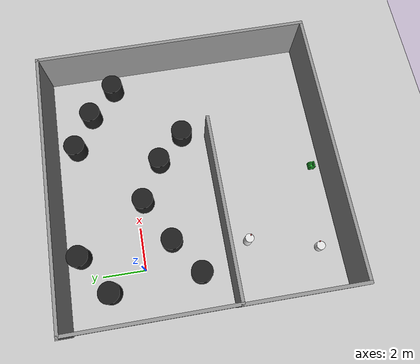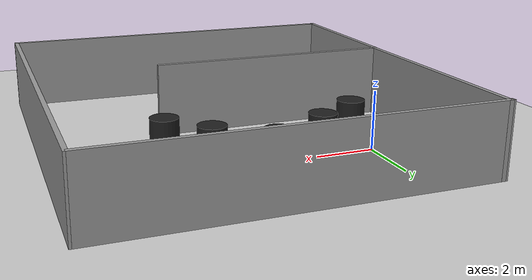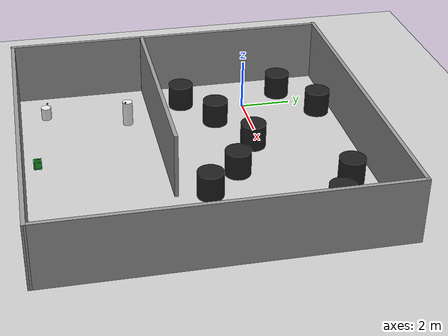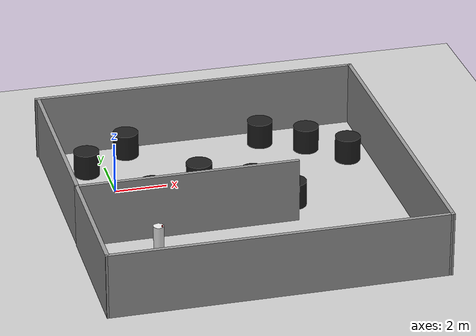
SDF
<sdf version='1.7'>
  <world name='default'>
    <include>
      <uri>model://ground_plane</uri>
    </include>
    <include>
      <uri>model://sun</uri>
    </include>

    <include>
      <uri>model://RedCube</uri>
      <name>cube1</name>
      <pose>0.693 -4.999 1.025 0 0 0</pose>
    </include>

    <include>
      <uri>model://RedCube</uri>
      <name>cube2</name>
      <pose>-0.0853 -8.074 0.877 0 0 0</pose>
    </include>

    <include>
      <uri>model://BlackCylinder</uri>
      <name>cylinder1</name>
      <pose>-0.777086 1.6771 0.499992 0 0 0</pose>
    </include>
    <include>
      <uri>model://BlackCylinder</uri>
      <name>cylinder2</name>
      <pose>-0.540203 -2.5323 0.499998 0 0 0</pose>
    </include>
    <include>
      <uri>model://BlackCylinder</uri>
      <name>cylinder3</name>
      <pose>1.12474 -1.40643 0.499998 0 0 0</pose>
    </include>

    <include>
      <uri>model://BlackCylinder</uri>
      <name>cylinder4</name>
      <pose>3.2081 -0.338127 0.499993 0 0 0</pose>
    </include>
    <include>
      <uri>model://BlackCylinder</uri>
      <name>cylinder5</name>
      <pose>5.08474 -1.38108 0.499993 0 0 0</pose>
    </include>
    <include>
      <uri>model://BlackCylinder</uri>
      <name>cylinder6</name>
      <pose>6.32471 -2.67805 0.50075 0 0 0</pose>
    </include>
    <include>
      <uri>model://BlackCylinder</uri>
      <name>cylinder7</name>
      <pose>6.38707 2.59126 0.499998 0 0 0</pose>
    </include>
    <include>
      <uri>model://BlackCylinder</uri>
      <name>cylinder8</name>
      <pose>8.02806 1.67804 0.499998 0 0 0</pose>
    </include>
    <include>
      <uri>model://BlackCylinder</uri>
      <name>cylinder9</name>
      <pose>9.37243 0.421085 0.499992 0 0 0</pose>
    </include>
    <include>
      <uri>model://BlackCylinder</uri>
      <name>cylinder10</name>
        <pose>1.03709 2.90645 0.499998 0 0 0</pose>
    </include>
    <include>
      <uri>model://WhiteCylinder</uri>
      <name>cylinder11</name>
      <pose>0.57604 -4.91033 0.49999 0 -0 0</pose>
    </include>
    <include>
      <uri>model://WhiteCylinderSmall</uri>
      <name>cylinder12</name>
      <pose>-0.243783 -8.14081 0.375525 0 0 0</pose>
    </include>

    <light name='spot_light' type='spot'>
      <pose>3.23001 -5 25 0 -0 0</pose>
      <diffuse>1 1 1 1</diffuse>
      <specular>1 1 1 1</specular>
      <direction>0 0 -1</direction>
      <attenuation>
        <range>100</range>
        <constant>0.1</constant>
        <linear>0.01</linear>
        <quadratic>0.001</quadratic>
      </attenuation>
      <cast_shadows>0</cast_shadows>
      <spot>
        <inner_angle>0.9</inner_angle>
        <outer_angle>1.5</outer_angle>
        <falloff>1</falloff>
      </spot>
    </light>

    <include>
      <uri>model://greenBin</uri>
      <name>greenBin</name>
      <pose>3.66348 -8.69612 0.365455 0 -0 0</pose>
    </include>

    <include>
      <uri>model://room22</uri>
      <name>room22</name>
      <pose>3.74962 -2.83171 0 0 -0 0</pose>
    </include>
  </world>
</sdf>

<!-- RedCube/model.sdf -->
<sdf version='1.6'>
  <model name='RedCube'>
    <link name='link_2'>
      <pose frame=''>0 0 0 0 -0 0</pose>
      <inertial>
        <mass>0.009375</mass>
        <inertia>
          <ixx>3.91e-06</ixx>
          <ixy>0</ixy>
          <ixz>0</ixz>
          <iyy>3.91e-06</iyy>
          <iyz>0</iyz>
          <izz>3.91e-06</izz>
        </inertia>
        <pose frame=''>0 0 0 0 -0 0</pose>
      </inertial>
      <gravity>1</gravity>
      <self_collide>0</self_collide>
      <kinematic>0</kinematic>
      <enable_wind>0</enable_wind>
      <visual name='visual'>
        <pose frame=''>0 0 0 0 -0 0</pose>
        <geometry>
          <box>
            <size>0.05 0.05 0.05</size>
          </box>
        </geometry>
        <material>
          <lighting>1</lighting>
          <script>
            <uri>file://media/materials/scripts/gazebo.material</uri>
            <name>Gazebo/Red</name>
          </script>
          <ambient>1 0 0 1</ambient>
          <diffuse>1 0 0 1</diffuse>
          <specular>1 0 0 1</specular>
          <emissive>0 0 0 1</emissive>
          <shader type='vertex'>
            <normal_map>__default__</normal_map>
          </shader>
        </material>
        <cast_shadows>1</cast_shadows>
        <transparency>0</transparency>
      </visual>
      <collision name='collision'>
        <laser_retro>0</laser_retro>
        <max_contacts>10</max_contacts>
        <pose frame=''>0 0 0 0 -0 0</pose>
        <geometry>
          <box>
            <size>0.05 0.05 0.05</size>
          </box>
        </geometry>
        <surface>
          <friction>
            <ode>
              <mu>1</mu>
              <mu2>1</mu2>
              <fdir1>0 0 0</fdir1>
              <slip1>0</slip1>
              <slip2>0</slip2>
            </ode>
            <torsional>
              <coefficient>1</coefficient>
              <patch_radius>0</patch_radius>
              <surface_radius>0</surface_radius>
              <use_patch_radius>1</use_patch_radius>
              <ode>
                <slip>0</slip>
              </ode>
            </torsional>
          </friction>
          <bounce>
            <restitution_coefficient>0</restitution_coefficient>
            <threshold>1e+06</threshold>
          </bounce>
          <contact>
            <collide_without_contact>0</collide_without_contact>
            <collide_without_contact_bitmask>1</collide_without_contact_bitmask>
            <collide_bitmask>1</collide_bitmask>
            <ode>
              <soft_cfm>0</soft_cfm>
              <soft_erp>0.2</soft_erp>
              <kp>1e+13</kp>
              <kd>1</kd>
              <max_vel>0.01</max_vel>
              <min_depth>0</min_depth>
            </ode>
            <bullet>
              <split_impulse>1</split_impulse>
              <split_impulse_penetration_threshold>-0.01</split_impulse_penetration_threshold>
              <soft_cfm>0</soft_cfm>
              <soft_erp>0.2</soft_erp>
              <kp>1e+13</kp>
              <kd>1</kd>
            </bullet>
          </contact>
        </surface>
      </collision>
    </link>
    <static>0</static>
    <allow_auto_disable>1</allow_auto_disable>
  </model>
</sdf>

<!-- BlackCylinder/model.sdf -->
<sdf version='1.7'>
  <model name='BlackCylinder'>
    <link name='link_0'>
      <inertial>
        <mass>1</mass>
        <inertia>
          <ixx>0.145833</ixx>
          <ixy>0</ixy>
          <ixz>0</ixz>
          <iyy>0.145833</iyy>
          <iyz>0</iyz>
          <izz>0.125</izz>
        </inertia>
        <pose>0 0 0 0 -0 0</pose>
      </inertial>
      <pose>-0 0 0 0 -0 0</pose>
      <gravity>1</gravity>
      <self_collide>0</self_collide>
      <kinematic>0</kinematic>
      <enable_wind>0</enable_wind>
      <visual name='visual'>
        <pose>0 0 0 0 -0 0</pose>
        <geometry>
          <cylinder>
            <radius>0.5</radius>
            <length>1</length>
          </cylinder>
        </geometry>
        <material>
          <lighting>1</lighting>
          <script>
            <uri>file://media/materials/scripts/gazebo.material</uri>
            <name>Gazebo/Black</name>
          </script>
          <shader type='pixel'>
            <normal_map>__default__</normal_map>
          </shader>
          <ambient>0 0 0 1</ambient>
          <diffuse>0 0 0 1</diffuse>
          <specular>0.1 0.1 0.1 1</specular>
          <emissive>0 0 0 1</emissive>
        </material>
        <transparency>0</transparency>
        <cast_shadows>1</cast_shadows>
      </visual>
      <collision name='collision'>
        <laser_retro>0</laser_retro>
        <max_contacts>10</max_contacts>
        <pose>0 0 0 0 -0 0</pose>
        <geometry>
          <cylinder>
            <radius>0.5</radius>
            <length>1</length>
          </cylinder>
        </geometry>
        <surface>
          <friction>
            <ode>
              <mu>1</mu>
              <mu2>1</mu2>
              <fdir1>0 0 0</fdir1>
              <slip1>0</slip1>
              <slip2>0</slip2>
            </ode>
            <torsional>
              <coefficient>1</coefficient>
              <patch_radius>0</patch_radius>
              <surface_radius>0</surface_radius>
              <use_patch_radius>1</use_patch_radius>
              <ode>
                <slip>0</slip>
              </ode>
            </torsional>
          </friction>
          <bounce>
            <restitution_coefficient>0</restitution_coefficient>
            <threshold>1e+06</threshold>
          </bounce>
          <contact>
            <collide_without_contact>0</collide_without_contact>
            <collide_without_contact_bitmask>1</collide_without_contact_bitmask>
            <collide_bitmask>1</collide_bitmask>
            <ode>
              <soft_cfm>0</soft_cfm>
              <soft_erp>0.2</soft_erp>
              <kp>1e+13</kp>
              <kd>1</kd>
              <max_vel>0.01</max_vel>
              <min_depth>0</min_depth>
            </ode>
            <bullet>
              <split_impulse>1</split_impulse>
              <split_impulse_penetration_threshold>-0.01</split_impulse_penetration_threshold>
              <soft_cfm>0</soft_cfm>
              <soft_erp>0.2</soft_erp>
              <kp>1e+13</kp>
              <kd>1</kd>
            </bullet>
          </contact>
        </surface>
      </collision>
    </link>
    <static>0</static>
    <allow_auto_disable>1</allow_auto_disable>
  </model>
</sdf>

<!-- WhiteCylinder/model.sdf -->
<sdf version='1.7'>
  <model name='WhiteCylinder'>
    <link name='link_0'>
      <inertial>
        <mass>1</mass>
        <inertia>
          <ixx>0.145833</ixx>
          <ixy>0</ixy>
          <ixz>0</ixz>
          <iyy>0.145833</iyy>
          <iyz>0</iyz>
          <izz>0.125</izz>
        </inertia>
        <pose>0 0 0 0 -0 0</pose>
      </inertial>
      <pose>0 0 0 0 -0 0</pose>
      <gravity>1</gravity>
      <self_collide>0</self_collide>
      <kinematic>0</kinematic>
      <enable_wind>0</enable_wind>
      <visual name='visual'>
        <pose>0 0 0 0 -0 0</pose>
        <geometry>
          <cylinder>
            <radius>0.2</radius>
            <length>1</length>
          </cylinder>
        </geometry>
        <material>
          <lighting>1</lighting>
          <script>
            <uri>file://media/materials/scripts/gazebo.material</uri>
            <name>Gazebo/White</name>
          </script>
          <shader type='pixel'>
            <normal_map>__default__</normal_map>
          </shader>
          <ambient>1 1 1 1</ambient>
          <diffuse>1 1 1 1</diffuse>
          <specular>0 0 0 1</specular>
          <emissive>0 0 0 1</emissive>
        </material>
        <transparency>0</transparency>
        <cast_shadows>1</cast_shadows>
      </visual>
      <collision name='collision'>
        <laser_retro>0</laser_retro>
        <max_contacts>10</max_contacts>
        <pose>0 0 0 0 -0 0</pose>
        <geometry>
          <cylinder>
            <radius>0.2</radius>
            <length>1</length>
          </cylinder>
        </geometry>
        <surface>
          <friction>
            <ode>
              <mu>1</mu>
              <mu2>1</mu2>
              <fdir1>0 0 0</fdir1>
              <slip1>0</slip1>
              <slip2>0</slip2>
            </ode>
            <torsional>
              <coefficient>1</coefficient>
              <patch_radius>0</patch_radius>
              <surface_radius>0</surface_radius>
              <use_patch_radius>1</use_patch_radius>
              <ode>
                <slip>0</slip>
              </ode>
            </torsional>
          </friction>
          <bounce>
            <restitution_coefficient>0</restitution_coefficient>
            <threshold>1e+06</threshold>
          </bounce>
          <contact>
            <collide_without_contact>0</collide_without_contact>
            <collide_without_contact_bitmask>1</collide_without_contact_bitmask>
            <collide_bitmask>1</collide_bitmask>
            <ode>
              <soft_cfm>0</soft_cfm>
              <soft_erp>0.2</soft_erp>
              <kp>1e+13</kp>
              <kd>1</kd>
              <max_vel>0.01</max_vel>
              <min_depth>0</min_depth>
            </ode>
            <bullet>
              <split_impulse>1</split_impulse>
              <split_impulse_penetration_threshold>-0.01</split_impulse_penetration_threshold>
              <soft_cfm>0</soft_cfm>
              <soft_erp>0.2</soft_erp>
              <kp>1e+13</kp>
              <kd>1</kd>
            </bullet>
          </contact>
        </surface>
      </collision>
    </link>
    <static>0</static>
    <allow_auto_disable>1</allow_auto_disable>
  </model>
</sdf>

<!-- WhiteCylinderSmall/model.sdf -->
<sdf version='1.7'>
  <model name='WhiteCylinderSmall'>
    <link name='link_0'>
      <inertial>
        <mass>1</mass>
        <inertia>
          <ixx>0.145833</ixx>
          <ixy>0</ixy>
          <ixz>0</ixz>
          <iyy>0.145833</iyy>
          <iyz>0</iyz>
          <izz>0.125</izz>
        </inertia>
        <pose>0 0 0 0 -0 0</pose>
      </inertial>
      <pose>0 0 0 0 -0 0</pose>
      <gravity>1</gravity>
      <self_collide>0</self_collide>
      <kinematic>0</kinematic>
      <enable_wind>0</enable_wind>
      <visual name='visual'>
        <pose>0 0 0 0 -0 0</pose>
        <geometry>
          <cylinder>
            <radius>0.2</radius>
            <length>0.5</length>
          </cylinder>
        </geometry>
        <material>
          <lighting>1</lighting>
          <script>
            <uri>file://media/materials/scripts/gazebo.material</uri>
            <name>Gazebo/White</name>
          </script>
          <shader type='pixel'>
            <normal_map>__default__</normal_map>
          </shader>
          <ambient>1 1 1 1</ambient>
          <diffuse>1 1 1 1</diffuse>
          <specular>0 0 0 1</specular>
          <emissive>0 0 0 1</emissive>
        </material>
        <transparency>0</transparency>
        <cast_shadows>1</cast_shadows>
      </visual>
      <collision name='collision'>
        <laser_retro>0</laser_retro>
        <max_contacts>10</max_contacts>
        <pose>0 0 0 0 -0 0</pose>
        <geometry>
          <cylinder>
            <radius>0.2</radius>
            <length>0.5</length>
          </cylinder>
        </geometry>
        <surface>
          <friction>
            <ode>
              <mu>1</mu>
              <mu2>1</mu2>
              <fdir1>0 0 0</fdir1>
              <slip1>0</slip1>
              <slip2>0</slip2>
            </ode>
            <torsional>
              <coefficient>1</coefficient>
              <patch_radius>0</patch_radius>
              <surface_radius>0</surface_radius>
              <use_patch_radius>1</use_patch_radius>
              <ode>
                <slip>0</slip>
              </ode>
            </torsional>
          </friction>
          <bounce>
            <restitution_coefficient>0</restitution_coefficient>
            <threshold>1e+06</threshold>
          </bounce>
          <contact>
            <collide_without_contact>0</collide_without_contact>
            <collide_without_contact_bitmask>1</collide_without_contact_bitmask>
            <collide_bitmask>1</collide_bitmask>
            <ode>
              <soft_cfm>0</soft_cfm>
              <soft_erp>0.2</soft_erp>
              <kp>1e+13</kp>
              <kd>1</kd>
              <max_vel>0.01</max_vel>
              <min_depth>0</min_depth>
            </ode>
            <bullet>
              <split_impulse>1</split_impulse>
              <split_impulse_penetration_threshold>-0.01</split_impulse_penetration_threshold>
              <soft_cfm>0</soft_cfm>
              <soft_erp>0.2</soft_erp>
              <kp>1e+13</kp>
              <kd>1</kd>
            </bullet>
          </contact>
        </surface>
      </collision>
    </link>
    <static>0</static>
    <allow_auto_disable>1</allow_auto_disable>
  </model>
</sdf>

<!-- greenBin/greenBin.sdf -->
<sdf version='1.6'>
  <model name='bin'>
    <link name='link_0'>
      <pose frame=''>0 -0.125 0.025 0 -0 0</pose>
      <inertial>
        <mass>1</mass>
        <inertia>
          <ixx>0.166667</ixx>
          <ixy>0</ixy>
          <ixz>0</ixz>
          <iyy>0.166667</iyy>
          <iyz>0</iyz>
          <izz>0.166667</izz>
        </inertia>
        <pose frame=''>0 0 0 0 -0 0</pose>
      </inertial>
      <gravity>1</gravity>
      <self_collide>0</self_collide>
      <kinematic>0</kinematic>
      <visual name='visual'>
        <pose frame=''>0 0 0 0 -0 0</pose>
        <geometry>
          <box>
            <size>0.3 0.05 0.3</size>
          </box>
        </geometry>
        <material>
          <lighting>1</lighting>
          <script>
            <uri>file://media/materials/scripts/gazebo.material</uri>
            <name>Gazebo/Green</name>
          </script>
          <ambient>0 1 0 1</ambient>
          <diffuse>0 1 0 1</diffuse>
          <specular>0.01 1 0.01 1</specular>
          <emissive>0 0 0 1</emissive>
          <shader type='vertex'>
            <normal_map>__default__</normal_map>
          </shader>
        </material>
        <cast_shadows>1</cast_shadows>
        <transparency>0</transparency>
      </visual>
      <collision name='collision'>
        <laser_retro>0</laser_retro>
        <max_contacts>10</max_contacts>
        <pose frame=''>0 0 0 0 -0 0</pose>
        <geometry>
          <box>
            <size>0.3 0.05 0.3</size>
          </box>
        </geometry>
        <surface>
          <friction>
            <ode>
              <mu>1</mu>
              <mu2>1</mu2>
              <fdir1>0 0 0</fdir1>
              <slip1>0</slip1>
              <slip2>0</slip2>
            </ode>
            <torsional>
              <coefficient>1</coefficient>
              <patch_radius>0</patch_radius>
              <surface_radius>0</surface_radius>
              <use_patch_radius>1</use_patch_radius>
              <ode>
                <slip>0</slip>
              </ode>
            </torsional>
          </friction>
          <bounce>
            <restitution_coefficient>0</restitution_coefficient>
            <threshold>1e+06</threshold>
          </bounce>
          <contact>
            <collide_without_contact>0</collide_without_contact>
            <collide_without_contact_bitmask>1</collide_without_contact_bitmask>
            <collide_bitmask>1</collide_bitmask>
            <ode>
              <soft_cfm>0</soft_cfm>
              <soft_erp>0.2</soft_erp>
              <kp>1e+13</kp>
              <kd>1</kd>
              <max_vel>0.01</max_vel>
              <min_depth>0</min_depth>
            </ode>
            <bullet>
              <split_impulse>1</split_impulse>
              <split_impulse_penetration_threshold>-0.01</split_impulse_penetration_threshold>
              <soft_cfm>0</soft_cfm>
              <soft_erp>0.2</soft_erp>
              <kp>1e+13</kp>
              <kd>1</kd>
            </bullet>
          </contact>
        </surface>
      </collision>
    </link>
    <link name='link_0_clone'>
      <pose frame=''>0 0.125 0.025 0 -0 0</pose>
      <inertial>
        <mass>1</mass>
        <inertia>
          <ixx>0.166667</ixx>
          <ixy>0</ixy>
          <ixz>0</ixz>
          <iyy>0.166667</iyy>
          <iyz>0</iyz>
          <izz>0.166667</izz>
        </inertia>
        <pose frame=''>0 0 0 0 -0 0</pose>
      </inertial>
      <self_collide>0</self_collide>
      <kinematic>0</kinematic>
      <visual name='visual'>
        <pose frame=''>0 0 0 0 -0 0</pose>
        <geometry>
          <box>
            <size>0.3 0.05 0.3</size>
          </box>
        </geometry>
        <material>
          <lighting>1</lighting>
          <script>
            <uri>file://media/materials/scripts/gazebo.material</uri>
            <name>Gazebo/Green</name>
          </script>
          <ambient>0 1 0 1</ambient>
          <diffuse>0 1 0 1</diffuse>
          <specular>0.01 1 0.01 1</specular>
          <emissive>0 0 0 1</emissive>
          <shader type='vertex'>
            <normal_map>__default__</normal_map>
          </shader>
        </material>
        <cast_shadows>1</cast_shadows>
        <transparency>0</transparency>
      </visual>
      <collision name='collision'>
        <laser_retro>0</laser_retro>
        <max_contacts>10</max_contacts>
        <pose frame=''>0 0 0 0 -0 0</pose>
        <geometry>
          <box>
            <size>0.3 0.05 0.3</size>
          </box>
        </geometry>
        <surface>
          <friction>
            <ode>
              <mu>1</mu>
              <mu2>1</mu2>
              <fdir1>0 0 0</fdir1>
              <slip1>0</slip1>
              <slip2>0</slip2>
            </ode>
            <torsional>
              <coefficient>1</coefficient>
              <patch_radius>0</patch_radius>
              <surface_radius>0</surface_radius>
              <use_patch_radius>1</use_patch_radius>
              <ode>
                <slip>0</slip>
              </ode>
            </torsional>
          </friction>
          <bounce>
            <restitution_coefficient>0</restitution_coefficient>
            <threshold>1e+06</threshold>
          </bounce>
          <contact>
            <collide_without_contact>0</collide_without_contact>
            <collide_without_contact_bitmask>1</collide_without_contact_bitmask>
            <collide_bitmask>1</collide_bitmask>
            <ode>
              <soft_cfm>0</soft_cfm>
              <soft_erp>0.2</soft_erp>
              <kp>1e+13</kp>
              <kd>1</kd>
              <max_vel>0.01</max_vel>
              <min_depth>0</min_depth>
            </ode>
            <bullet>
              <split_impulse>1</split_impulse>
              <split_impulse_penetration_threshold>-0.01</split_impulse_penetration_threshold>
              <soft_cfm>0</soft_cfm>
              <soft_erp>0.2</soft_erp>
              <kp>1e+13</kp>
              <kd>1</kd>
            </bullet>
          </contact>
        </surface>
      </collision>
    </link>
    <link name='link_0_clone_0'>
      <pose frame=''>-0.124999 -0 0.025 0 -0 1.5708</pose>
      <inertial>
        <mass>1</mass>
        <inertia>
          <ixx>0.166667</ixx>
          <ixy>0</ixy>
          <ixz>0</ixz>
          <iyy>0.166667</iyy>
          <iyz>0</iyz>
          <izz>0.166667</izz>
        </inertia>
        <pose frame=''>0 0 0 0 -0 0</pose>
      </inertial>
      <self_collide>0</self_collide>
      <kinematic>0</kinematic>
      <gravity>1</gravity>
      <visual name='visual'>
        <pose frame=''>0 0 0 0 -0 0</pose>
        <geometry>
          <box>
            <size>0.3 0.05 0.3</size>
          </box>
        </geometry>
        <material>
          <lighting>1</lighting>
          <script>
            <uri>file://media/materials/scripts/gazebo.material</uri>
            <name>Gazebo/Green</name>
          </script>
          <ambient>0 1 0 1</ambient>
          <diffuse>0 1 0 1</diffuse>
          <specular>0.01 1 0.01 1</specular>
          <emissive>0 0 0 1</emissive>
          <shader type='vertex'>
            <normal_map>__default__</normal_map>
          </shader>
        </material>
        <cast_shadows>1</cast_shadows>
        <transparency>0</transparency>
      </visual>
      <collision name='collision'>
        <laser_retro>0</laser_retro>
        <max_contacts>10</max_contacts>
        <pose frame=''>0 0 0 0 -0 0</pose>
        <geometry>
          <box>
            <size>0.3 0.05 0.3</size>
          </box>
        </geometry>
        <surface>
          <friction>
            <ode>
              <mu>1</mu>
              <mu2>1</mu2>
              <fdir1>0 0 0</fdir1>
              <slip1>0</slip1>
              <slip2>0</slip2>
            </ode>
            <torsional>
              <coefficient>1</coefficient>
              <patch_radius>0</patch_radius>
              <surface_radius>0</surface_radius>
              <use_patch_radius>1</use_patch_radius>
              <ode>
                <slip>0</slip>
              </ode>
            </torsional>
          </friction>
          <bounce>
            <restitution_coefficient>0</restitution_coefficient>
            <threshold>1e+06</threshold>
          </bounce>
          <contact>
            <collide_without_contact>0</collide_without_contact>
            <collide_without_contact_bitmask>1</collide_without_contact_bitmask>
            <collide_bitmask>1</collide_bitmask>
            <ode>
              <soft_cfm>0</soft_cfm>
              <soft_erp>0.2</soft_erp>
              <kp>1e+13</kp>
              <kd>1</kd>
              <max_vel>0.01</max_vel>
              <min_depth>0</min_depth>
            </ode>
            <bullet>
              <split_impulse>1</split_impulse>
              <split_impulse_penetration_threshold>-0.01</split_impulse_penetration_threshold>
              <soft_cfm>0</soft_cfm>
              <soft_erp>0.2</soft_erp>
              <kp>1e+13</kp>
              <kd>1</kd>
            </bullet>
          </contact>
        </surface>
      </collision>
    </link>
    <link name='link_0_clone_0_clone'>
      <pose frame=''>0.124999 0 0.025 0 -0 1.5708</pose>
      <inertial>
        <mass>1</mass>
        <inertia>
          <ixx>0.166667</ixx>
          <ixy>0</ixy>
          <ixz>0</ixz>
          <iyy>0.166667</iyy>
          <iyz>0</iyz>
          <izz>0.166667</izz>
        </inertia>
        <pose frame=''>0 0 0 0 -0 0</pose>
      </inertial>
      <self_collide>0</self_collide>
      <kinematic>0</kinematic>
      <gravity>1</gravity>
      <visual name='visual'>
        <pose frame=''>0 0 0 0 -0 0</pose>
        <geometry>
          <box>
            <size>0.3 0.05 0.3</size>
          </box>
        </geometry>
        <material>
          <lighting>1</lighting>
          <script>
            <uri>file://media/materials/scripts/gazebo.material</uri>
            <name>Gazebo/Green</name>
          </script>
          <ambient>0 1 0 1</ambient>
          <diffuse>0 1 0 1</diffuse>
          <specular>0.01 1 0.01 1</specular>
          <emissive>0 0 0 1</emissive>
          <shader type='vertex'>
            <normal_map>__default__</normal_map>
          </shader>
        </material>
        <cast_shadows>1</cast_shadows>
        <transparency>0</transparency>
      </visual>
      <collision name='collision'>
        <laser_retro>0</laser_retro>
        <max_contacts>10</max_contacts>
        <pose frame=''>0 0 0 0 -0 0</pose>
        <geometry>
          <box>
            <size>0.3 0.05 0.3</size>
          </box>
        </geometry>
        <surface>
          <friction>
            <ode>
              <mu>1</mu>
              <mu2>1</mu2>
              <fdir1>0 0 0</fdir1>
              <slip1>0</slip1>
              <slip2>0</slip2>
            </ode>
            <torsional>
              <coefficient>1</coefficient>
              <patch_radius>0</patch_radius>
              <surface_radius>0</surface_radius>
              <use_patch_radius>1</use_patch_radius>
              <ode>
                <slip>0</slip>
              </ode>
            </torsional>
          </friction>
          <bounce>
            <restitution_coefficient>0</restitution_coefficient>
            <threshold>1e+06</threshold>
          </bounce>
          <contact>
            <collide_without_contact>0</collide_without_contact>
            <collide_without_contact_bitmask>1</collide_without_contact_bitmask>
            <collide_bitmask>1</collide_bitmask>
            <ode>
              <soft_cfm>0</soft_cfm>
              <soft_erp>0.2</soft_erp>
              <kp>1e+13</kp>
              <kd>1</kd>
              <max_vel>0.01</max_vel>
              <min_depth>0</min_depth>
            </ode>
            <bullet>
              <split_impulse>1</split_impulse>
              <split_impulse_penetration_threshold>-0.01</split_impulse_penetration_threshold>
              <soft_cfm>0</soft_cfm>
              <soft_erp>0.2</soft_erp>
              <kp>1e+13</kp>
              <kd>1</kd>
            </bullet>
          </contact>
        </surface>
      </collision>
    </link>
    <link name='link_0_clone_1'>
      <pose frame=''>0 0 -0.099999 1.5708 -0 0</pose>
      <inertial>
        <mass>1</mass>
        <inertia>
          <ixx>0.166667</ixx>
          <ixy>0</ixy>
          <ixz>0</ixz>
          <iyy>0.166667</iyy>
          <iyz>0</iyz>
          <izz>0.166667</izz>
        </inertia>
        <pose frame=''>0 0 0 0 -0 0</pose>
      </inertial>
      <self_collide>0</self_collide>
      <kinematic>0</kinematic>
      <gravity>1</gravity>
      <visual name='visual'>
        <pose frame=''>0 0 0 0 -0 0</pose>
        <geometry>
          <box>
            <size>0.3 0.05 0.3</size>
          </box>
        </geometry>
        <material>
          <lighting>1</lighting>
          <script>
            <uri>file://media/materials/scripts/gazebo.material</uri>
            <name>Gazebo/Green</name>
          </script>
          <ambient>0 1 0 1</ambient>
          <diffuse>0 1 0 1</diffuse>
          <specular>0.01 1 0.01 1</specular>
          <emissive>0 0 0 1</emissive>
          <shader type='vertex'>
            <normal_map>__default__</normal_map>
          </shader>
        </material>
        <cast_shadows>1</cast_shadows>
        <transparency>0</transparency>
      </visual>
      <collision name='collision'>
        <laser_retro>0</laser_retro>
        <max_contacts>10</max_contacts>
        <pose frame=''>0 0 0 0 -0 0</pose>
        <geometry>
          <box>
            <size>0.3 0.05 0.3</size>
          </box>
        </geometry>
        <surface>
          <friction>
            <ode>
              <mu>1</mu>
              <mu2>1</mu2>
              <fdir1>0 0 0</fdir1>
              <slip1>0</slip1>
              <slip2>0</slip2>
            </ode>
            <torsional>
              <coefficient>1</coefficient>
              <patch_radius>0</patch_radius>
              <surface_radius>0</surface_radius>
              <use_patch_radius>1</use_patch_radius>
              <ode>
                <slip>0</slip>
              </ode>
            </torsional>
          </friction>
          <bounce>
            <restitution_coefficient>0</restitution_coefficient>
            <threshold>1e+06</threshold>
          </bounce>
          <contact>
            <collide_without_contact>0</collide_without_contact>
            <collide_without_contact_bitmask>1</collide_without_contact_bitmask>
            <collide_bitmask>1</collide_bitmask>
            <ode>
              <soft_cfm>0</soft_cfm>
              <soft_erp>0.2</soft_erp>
              <kp>1e+13</kp>
              <kd>1</kd>
              <max_vel>0.01</max_vel>
              <min_depth>0</min_depth>
            </ode>
            <bullet>
              <split_impulse>1</split_impulse>
              <split_impulse_penetration_threshold>-0.01</split_impulse_penetration_threshold>
              <soft_cfm>0</soft_cfm>
              <soft_erp>0.2</soft_erp>
              <kp>1e+13</kp>
              <kd>1</kd>
            </bullet>
          </contact>
        </surface>
      </collision>
    </link>
    <static>1</static>
    <allow_auto_disable>1</allow_auto_disable>
  </model>
</sdf>

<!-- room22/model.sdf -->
<sdf version='1.7'>
  <model name='room22'>
    <pose>4.01371 -2.989 0 0 -0 0</pose>
    <link name='Wall_10'>
      <collision name='Wall_10_Collision'>
        <geometry>
          <box>
            <size>13.092 0.15 2.5</size>
          </box>
        </geometry>
        <pose>0 0 1.25 0 -0 0</pose>
      </collision>
      <visual name='Wall_10_Visual'>
        <pose>0 0 1.25 0 -0 0</pose>
        <geometry>
          <box>
            <size>13.092 0.15 2.5</size>
          </box>
        </geometry>
        <material>
          <script>
            <uri>file://media/materials/scripts/gazebo.material</uri>
            <name>Gazebo/Grey</name>
          </script>
          <ambient>1 1 1 1</ambient>
        </material>
        <meta>
          <layer>0</layer>
        </meta>
      </visual>
      <pose>6.62786 -0.000121 0 0 -0 -1.56842</pose>
    </link>
    <link name='Wall_11'>
      <collision name='Wall_11_Collision'>
        <geometry>
          <box>
            <size>12.7792 0.15 2.5</size>
          </box>
        </geometry>
        <pose>0 0 1.25 0 -0 0</pose>
      </collision>
      <visual name='Wall_11_Visual'>
        <pose>0 0 1.25 0 -0 0</pose>
        <geometry>
          <box>
            <size>12.7792 0.15 2.5</size>
          </box>
        </geometry>
        <material>
          <script>
            <uri>file://media/materials/scripts/gazebo.material</uri>
            <name>Gazebo/Grey</name>
          </script>
          <ambient>1 1 1 1</ambient>
        </material>
        <meta>
          <layer>0</layer>
        </meta>
      </visual>
      <pose>0.328708 -6.44116 0 0 -0 3.13685</pose>
    </link>
    <link name='Wall_12'>
      <collision name='Wall_12_Collision'>
        <geometry>
          <box>
            <size>5.5 0.15 2.5</size>
          </box>
        </geometry>
        <pose>0 0 1.25 0 -0 0</pose>
      </collision>
      <visual name='Wall_12_Visual'>
        <pose>0 0 1.25 0 -0 0</pose>
        <geometry>
          <box>
            <size>5.5 0.15 2.5</size>
          </box>
        </geometry>
        <material>
          <script>
            <uri>file://media/materials/scripts/gazebo.material</uri>
            <name>Gazebo/Grey</name>
          </script>
          <ambient>1 1 1 1</ambient>
        </material>
        <meta>
          <layer>0</layer>
        </meta>
      </visual>
      <pose>-5.98583 -3.73623 0 0 -0 1.5708</pose>
    </link>
    <link name='Wall_5'>
      <collision name='Wall_5_Collision'>
        <geometry>
          <box>
            <size>7.68291 0.15 2.5</size>
          </box>
        </geometry>
        <pose>0 0 1.25 0 -0 0</pose>
      </collision>
      <visual name='Wall_5_Visual'>
        <pose>0 0 1.25 0 -0 0</pose>
        <geometry>
          <box>
            <size>7.68291 0.15 2.5</size>
          </box>
        </geometry>
        <material>
          <script>
            <uri>file://media/materials/scripts/gazebo.material</uri>
            <name>Gazebo/Grey</name>
          </script>
          <ambient>1 1 1 1</ambient>
        </material>
        <meta>
          <layer>0</layer>
        </meta>
      </visual>
      <pose>-5.97776 2.70481 0 0 -0 -1.5682</pose>
    </link>
    <link name='Wall_7'>
      <collision name='Wall_7_Collision'>
        <geometry>
          <box>
            <size>8.5 0.15 2.5</size>
          </box>
        </geometry>
        <pose>0 0 1.25 0 -0 0</pose>
      </collision>
      <visual name='Wall_7_Visual'>
        <pose>0 0 1.25 0 -0 0</pose>
        <geometry>
          <box>
            <size>8.5 0.15 2.5</size>
          </box>
        </geometry>
        <material>
          <script>
            <uri>file://media/materials/scripts/gazebo.material</uri>
            <name>Gazebo/Grey</name>
          </script>
          <ambient>1 1 1 1</ambient>
        </material>
        <meta>
          <layer>0</layer>
        </meta>
      </visual>
      <pose>-1.81083 -1.06123 0 0 -0 0</pose>
    </link>
    <link name='Wall_9'>
      <collision name='Wall_9_Collision'>
        <geometry>
          <box>
            <size>12.75 0.15 2.5</size>
          </box>
        </geometry>
        <pose>0 0 1.25 0 -0 0</pose>
      </collision>
      <visual name='Wall_9_Visual'>
        <pose>0 0 1.25 0 -0 0</pose>
        <geometry>
          <box>
            <size>12.75 0.15 2.5</size>
          </box>
        </geometry>
        <material>
          <script>
            <uri>file://media/materials/scripts/gazebo.material</uri>
            <name>Gazebo/Grey</name>
          </script>
          <ambient>1 1 1 1</ambient>
        </material>
        <meta>
          <layer>0</layer>
        </meta>
      </visual>
      <pose>0.250951 6.47085 0 0 -0 0</pose>
    </link>
    <static>1</static>
  </model>
</sdf>
